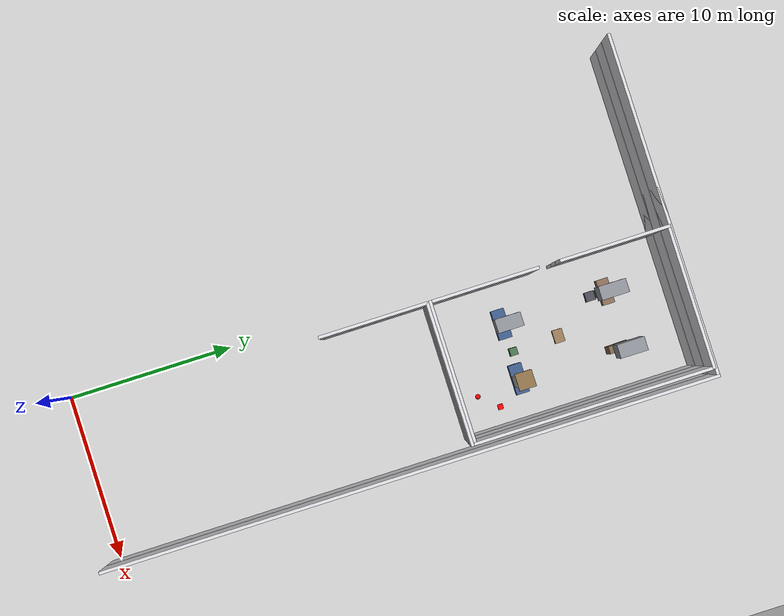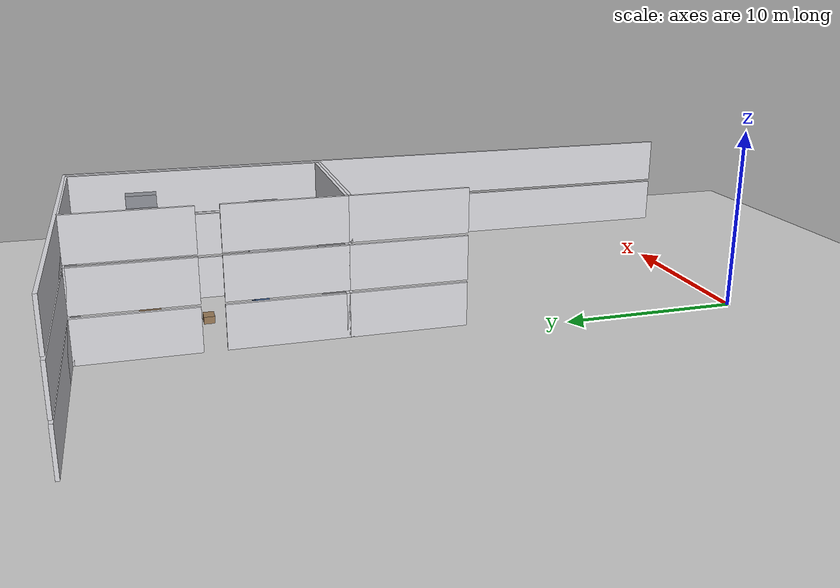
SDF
<sdf version="1.7">
 <world name="generated_world">
  <include><uri>model://sun</uri></include>
  <include><uri>model://ground_plane</uri></include>
  <model name="generated_building">
   <static>true</static>
   <link name="exterior_north_floor_0">
    <pose>0.0000 35.9100 1.2250 0.0000 0.0000 0.0000</pose>
    <collision name="exterior_north_floor_0_collision">
     <geometry><box><size>20.0000 0.1800 2.4500</size></box></geometry>
    </collision>
    <visual name="exterior_north_floor_0_visual">
     <geometry><box><size>20.0000 0.1800 2.4500</size></box></geometry>
     <material><ambient>0.86 0.86 0.88 1</ambient><diffuse>0.86 0.86 0.88 1</diffuse></material>
    </visual>
    <gravity>false</gravity>
   </link>
   <link name="north_end_wall_floor_0">
    <pose>0.0000 35.9100 1.2250 0.0000 0.0000 0.0000</pose>
    <collision name="north_end_wall_floor_0_collision">
     <geometry><box><size>2.2000 0.1800 2.4500</size></box></geometry>
    </collision>
    <visual name="north_end_wall_floor_0_visual">
     <geometry><box><size>2.2000 0.1800 2.4500</size></box></geometry>
     <material><ambient>0.86 0.86 0.88 1</ambient><diffuse>0.86 0.86 0.88 1</diffuse></material>
    </visual>
    <gravity>false</gravity>
   </link>
   <link name="floor_0_room_1_corridor_wall_upper">
    <pose>1.1900 18.6725 1.2250 0.0000 0.0000 0.0000</pose>
    <collision name="floor_0_room_1_corridor_wall_upper_collision">
     <geometry><box><size>0.1800 6.4150 2.4500</size></box></geometry>
    </collision>
    <visual name="floor_0_room_1_corridor_wall_upper_visual">
     <geometry><box><size>0.1800 6.4150 2.4500</size></box></geometry>
     <material><ambient>0.86 0.86 0.88 1</ambient><diffuse>0.86 0.86 0.88 1</diffuse></material>
    </visual>
    <gravity>false</gravity>
   </link>
   <link name="floor_0_room_1_north_wall">
    <pose>5.3000 21.7900 1.2250 0.0000 0.0000 0.0000</pose>
    <collision name="floor_0_room_1_north_wall_collision">
     <geometry><box><size>8.4000 0.1800 2.4500</size></box></geometry>
    </collision>
    <visual name="floor_0_room_1_north_wall_visual">
     <geometry><box><size>8.4000 0.1800 2.4500</size></box></geometry>
     <material><ambient>0.86 0.86 0.88 1</ambient><diffuse>0.86 0.86 0.88 1</diffuse></material>
    </visual>
    <gravity>false</gravity>
   </link>
   <link name="floor_0_room_3_corridor_wall_lower">
    <pose>1.1900 25.0875 1.2250 0.0000 0.0000 0.0000</pose>
    <collision name="floor_0_room_3_corridor_wall_lower_collision">
     <geometry><box><size>0.1800 6.4150 2.4500</size></box></geometry>
    </collision>
    <visual name="floor_0_room_3_corridor_wall_lower_visual">
     <geometry><box><size>0.1800 6.4150 2.4500</size></box></geometry>
     <material><ambient>0.86 0.86 0.88 1</ambient><diffuse>0.86 0.86 0.88 1</diffuse></material>
    </visual>
    <gravity>false</gravity>
   </link>
   <link name="floor_0_room_3_corridor_wall_upper">
    <pose>1.1900 32.7025 1.2250 0.0000 0.0000 0.0000</pose>
    <collision name="floor_0_room_3_corridor_wall_upper_collision">
     <geometry><box><size>0.1800 6.4150 2.4500</size></box></geometry>
    </collision>
    <visual name="floor_0_room_3_corridor_wall_upper_visual">
     <geometry><box><size>0.1800 6.4150 2.4500</size></box></geometry>
     <material><ambient>0.86 0.86 0.88 1</ambient><diffuse>0.86 0.86 0.88 1</diffuse></material>
    </visual>
    <gravity>false</gravity>
   </link>
   <link name="floor_0_room_3_east_wall">
    <pose>9.4100 28.8950 1.2250 0.0000 0.0000 0.0000</pose>
    <collision name="floor_0_room_3_east_wall_collision">
     <geometry><box><size>0.1800 14.0300 2.4500</size></box></geometry>
    </collision>
    <visual name="floor_0_room_3_east_wall_visual">
     <geometry><box><size>0.1800 14.0300 2.4500</size></box></geometry>
     <material><ambient>0.86 0.86 0.88 1</ambient><diffuse>0.86 0.86 0.88 1</diffuse></material>
    </visual>
    <gravity>false</gravity>
   </link>
   <link name="floor_0_room_3_south_wall">
    <pose>5.3000 21.9700 1.2250 0.0000 0.0000 0.0000</pose>
    <collision name="floor_0_room_3_south_wall_collision">
     <geometry><box><size>8.4000 0.1800 2.4500</size></box></geometry>
    </collision>
    <visual name="floor_0_room_3_south_wall_visual">
     <geometry><box><size>8.4000 0.1800 2.4500</size></box></geometry>
     <material><ambient>0.86 0.86 0.88 1</ambient><diffuse>0.86 0.86 0.88 1</diffuse></material>
    </visual>
    <gravity>false</gravity>
   </link>
   <link name="floor_0_room_3_north_wall">
    <pose>5.3000 35.8200 1.2250 0.0000 0.0000 0.0000</pose>
    <collision name="floor_0_room_3_north_wall_collision">
     <geometry><box><size>8.4000 0.1800 2.4500</size></box></geometry>
    </collision>
    <visual name="floor_0_room_3_north_wall_visual">
     <geometry><box><size>8.4000 0.1800 2.4500</size></box></geometry>
     <material><ambient>0.86 0.86 0.88 1</ambient><diffuse>0.86 0.86 0.88 1</diffuse></material>
    </visual>
    <gravity>false</gravity>
   </link>
   <link name="floor_0_room_3_sofa_a">
    <pose>3.6000 25.8375 0.4500 0.0000 0.0000 0.0000</pose>
    <collision name="floor_0_room_3_sofa_a_collision">
     <geometry><box><size>1.8000 0.8000 0.8000</size></box></geometry>
    </collision>
    <visual name="floor_0_room_3_sofa_a_visual">
     <geometry><box><size>1.8000 0.8000 0.8000</size></box></geometry>
     <material><ambient>0.24 0.36 0.54 1</ambient><diffuse>0.24 0.36 0.54 1</diffuse></material>
    </visual>
    <gravity>false</gravity>
   </link>
   <link name="floor_0_room_3_sofa_b">
    <pose>7.0000 25.8375 0.4500 0.0000 0.0000 3.1400</pose>
    <collision name="floor_0_room_3_sofa_b_collision">
     <geometry><box><size>1.8000 0.8000 0.8000</size></box></geometry>
    </collision>
    <visual name="floor_0_room_3_sofa_b_visual">
     <geometry><box><size>1.8000 0.8000 0.8000</size></box></geometry>
     <material><ambient>0.24 0.36 0.54 1</ambient><diffuse>0.24 0.36 0.54 1</diffuse></material>
    </visual>
    <gravity>false</gravity>
   </link>
   <link name="floor_0_room_3_coffee_table">
    <pose>5.3000 28.8950 0.2500 0.0000 0.0000 0.0000</pose>
    <collision name="floor_0_room_3_coffee_table_collision">
     <geometry><box><size>0.8000 0.6000 0.4000</size></box></geometry>
    </collision>
    <visual name="floor_0_room_3_coffee_table_visual">
     <geometry><box><size>0.8000 0.6000 0.4000</size></box></geometry>
     <material><ambient>0.60 0.48 0.34 1</ambient><diffuse>0.60 0.48 0.34 1</diffuse></material>
    </visual>
    <gravity>false</gravity>
   </link>
   <link name="floor_0_room_3_bookshelf">
    <pose>7.0000 31.9525 0.8500 0.0000 0.0000 0.0000</pose>
    <collision name="floor_0_room_3_bookshelf_collision">
     <geometry><box><size>0.4500 1.2000 1.7000</size></box></geometry>
    </collision>
    <visual name="floor_0_room_3_bookshelf_visual">
     <geometry><box><size>0.4500 1.2000 1.7000</size></box></geometry>
     <material><ambient>0.50 0.40 0.30 1</ambient><diffuse>0.50 0.40 0.30 1</diffuse></material>
    </visual>
    <gravity>false</gravity>
   </link>
   <link name="floor_0_room_3_planter">
    <pose>3.6000 31.9525 0.4500 0.0000 0.0000 0.0000</pose>
    <collision name="floor_0_room_3_planter_collision">
     <geometry><box><size>0.4500 0.4500 0.9000</size></box></geometry>
    </collision>
    <visual name="floor_0_room_3_planter_visual">
     <geometry><box><size>0.4500 0.4500 0.9000</size></box></geometry>
     <material><ambient>0.28 0.46 0.30 1</ambient><diffuse>0.28 0.46 0.30 1</diffuse></material>
    </visual>
    <gravity>false</gravity>
   </link>
   <link name="exterior_east_floor_1">
    <pose>9.9100 18.0000 3.8250 0.0000 0.0000 0.0000</pose>
    <collision name="exterior_east_floor_1_collision">
     <geometry><box><size>0.1800 36.0000 2.4500</size></box></geometry>
    </collision>
    <visual name="exterior_east_floor_1_visual">
     <geometry><box><size>0.1800 36.0000 2.4500</size></box></geometry>
     <material><ambient>0.86 0.86 0.88 1</ambient><diffuse>0.86 0.86 0.88 1</diffuse></material>
    </visual>
    <gravity>false</gravity>
   </link>
   <link name="exterior_north_floor_1">
    <pose>0.0000 35.9100 3.8250 0.0000 0.0000 0.0000</pose>
    <collision name="exterior_north_floor_1_collision">
     <geometry><box><size>20.0000 0.1800 2.4500</size></box></geometry>
    </collision>
    <visual name="exterior_north_floor_1_visual">
     <geometry><box><size>20.0000 0.1800 2.4500</size></box></geometry>
     <material><ambient>0.86 0.86 0.88 1</ambient><diffuse>0.86 0.86 0.88 1</diffuse></material>
    </visual>
    <gravity>false</gravity>
   </link>
   <link name="north_end_wall_floor_1">
    <pose>0.0000 35.9100 3.8250 0.0000 0.0000 0.0000</pose>
    <collision name="north_end_wall_floor_1_collision">
     <geometry><box><size>2.2000 0.1800 2.4500</size></box></geometry>
    </collision>
    <visual name="north_end_wall_floor_1_visual">
     <geometry><box><size>2.2000 0.1800 2.4500</size></box></geometry>
     <material><ambient>0.86 0.86 0.88 1</ambient><diffuse>0.86 0.86 0.88 1</diffuse></material>
    </visual>
    <gravity>false</gravity>
   </link>
   <link name="floor_1_room_1_corridor_wall_upper">
    <pose>1.1900 18.6725 3.8250 0.0000 0.0000 0.0000</pose>
    <collision name="floor_1_room_1_corridor_wall_upper_collision">
     <geometry><box><size>0.1800 6.4150 2.4500</size></box></geometry>
    </collision>
    <visual name="floor_1_room_1_corridor_wall_upper_visual">
     <geometry><box><size>0.1800 6.4150 2.4500</size></box></geometry>
     <material><ambient>0.86 0.86 0.88 1</ambient><diffuse>0.86 0.86 0.88 1</diffuse></material>
    </visual>
    <gravity>false</gravity>
   </link>
   <link name="floor_1_room_1_north_wall">
    <pose>5.3000 21.7900 3.8250 0.0000 0.0000 0.0000</pose>
    <collision name="floor_1_room_1_north_wall_collision">
     <geometry><box><size>8.4000 0.1800 2.4500</size></box></geometry>
    </collision>
    <visual name="floor_1_room_1_north_wall_visual">
     <geometry><box><size>8.4000 0.1800 2.4500</size></box></geometry>
     <material><ambient>0.86 0.86 0.88 1</ambient><diffuse>0.86 0.86 0.88 1</diffuse></material>
    </visual>
    <gravity>false</gravity>
   </link>
   <link name="floor_1_room_3_corridor_wall_lower">
    <pose>1.1900 25.0875 3.8250 0.0000 0.0000 0.0000</pose>
    <collision name="floor_1_room_3_corridor_wall_lower_collision">
     <geometry><box><size>0.1800 6.4150 2.4500</size></box></geometry>
    </collision>
    <visual name="floor_1_room_3_corridor_wall_lower_visual">
     <geometry><box><size>0.1800 6.4150 2.4500</size></box></geometry>
     <material><ambient>0.86 0.86 0.88 1</ambient><diffuse>0.86 0.86 0.88 1</diffuse></material>
    </visual>
    <gravity>false</gravity>
   </link>
   <link name="floor_1_room_3_corridor_wall_upper">
    <pose>1.1900 32.7025 3.8250 0.0000 0.0000 0.0000</pose>
    <collision name="floor_1_room_3_corridor_wall_upper_collision">
     <geometry><box><size>0.1800 6.4150 2.4500</size></box></geometry>
    </collision>
    <visual name="floor_1_room_3_corridor_wall_upper_visual">
     <geometry><box><size>0.1800 6.4150 2.4500</size></box></geometry>
     <material><ambient>0.86 0.86 0.88 1</ambient><diffuse>0.86 0.86 0.88 1</diffuse></material>
    </visual>
    <gravity>false</gravity>
   </link>
   <link name="floor_1_room_3_east_wall">
    <pose>9.4100 28.8950 3.8250 0.0000 0.0000 0.0000</pose>
    <collision name="floor_1_room_3_east_wall_collision">
     <geometry><box><size>0.1800 14.0300 2.4500</size></box></geometry>
    </collision>
    <visual name="floor_1_room_3_east_wall_visual">
     <geometry><box><size>0.1800 14.0300 2.4500</size></box></geometry>
     <material><ambient>0.86 0.86 0.88 1</ambient><diffuse>0.86 0.86 0.88 1</diffuse></material>
    </visual>
    <gravity>false</gravity>
   </link>
   <link name="floor_1_room_3_south_wall">
    <pose>5.3000 21.9700 3.8250 0.0000 0.0000 0.0000</pose>
    <collision name="floor_1_room_3_south_wall_collision">
     <geometry><box><size>8.4000 0.1800 2.4500</size></box></geometry>
    </collision>
    <visual name="floor_1_room_3_south_wall_visual">
     <geometry><box><size>8.4000 0.1800 2.4500</size></box></geometry>
     <material><ambient>0.86 0.86 0.88 1</ambient><diffuse>0.86 0.86 0.88 1</diffuse></material>
    </visual>
    <gravity>false</gravity>
   </link>
   <link name="floor_1_room_3_north_wall">
    <pose>5.3000 35.8200 3.8250 0.0000 0.0000 0.0000</pose>
    <collision name="floor_1_room_3_north_wall_collision">
     <geometry><box><size>8.4000 0.1800 2.4500</size></box></geometry>
    </collision>
    <visual name="floor_1_room_3_north_wall_visual">
     <geometry><box><size>8.4000 0.1800 2.4500</size></box></geometry>
     <material><ambient>0.86 0.86 0.88 1</ambient><diffuse>0.86 0.86 0.88 1</diffuse></material>
    </visual>
    <gravity>false</gravity>
   </link>
   <link name="floor_1_room_3_desk">
    <pose>3.6000 31.9525 3.0500 0.0000 0.0000 0.0000</pose>
    <collision name="floor_1_room_3_desk_collision">
     <geometry><box><size>1.5000 0.7000 0.7500</size></box></geometry>
    </collision>
    <visual name="floor_1_room_3_desk_visual">
     <geometry><box><size>1.5000 0.7000 0.7500</size></box></geometry>
     <material><ambient>0.54 0.43 0.34 1</ambient><diffuse>0.54 0.43 0.34 1</diffuse></material>
    </visual>
    <gravity>false</gravity>
   </link>
   <link name="floor_1_room_3_chair">
    <pose>3.6000 31.0525 2.8800 0.0000 0.0000 0.0000</pose>
    <collision name="floor_1_room_3_chair_collision">
     <geometry><box><size>0.5500 0.5500 0.5500</size></box></geometry>
    </collision>
    <visual name="floor_1_room_3_chair_visual">
     <geometry><box><size>0.5500 0.5500 0.5500</size></box></geometry>
     <material><ambient>0.30 0.30 0.34 1</ambient><diffuse>0.30 0.30 0.34 1</diffuse></material>
    </visual>
    <gravity>false</gravity>
   </link>
   <link name="floor_1_room_3_cabinet">
    <pose>7.0000 25.8375 3.5000 0.0000 0.0000 0.0000</pose>
    <collision name="floor_1_room_3_cabinet_collision">
     <geometry><box><size>0.6000 1.0000 1.8000</size></box></geometry>
    </collision>
    <visual name="floor_1_room_3_cabinet_visual">
     <geometry><box><size>0.6000 1.0000 1.8000</size></box></geometry>
     <material><ambient>0.72 0.72 0.74 1</ambient><diffuse>0.72 0.72 0.74 1</diffuse></material>
    </visual>
    <gravity>false</gravity>
   </link>
   <link name="floor_1_room_3_side_table">
    <pose>7.0000 31.9525 2.9200 0.0000 0.0000 0.0000</pose>
    <collision name="floor_1_room_3_side_table_collision">
     <geometry><box><size>0.7000 0.7000 0.4500</size></box></geometry>
    </collision>
    <visual name="floor_1_room_3_side_table_visual">
     <geometry><box><size>0.7000 0.7000 0.4500</size></box></geometry>
     <material><ambient>0.52 0.42 0.33 1</ambient><diffuse>0.52 0.42 0.33 1</diffuse></material>
    </visual>
    <gravity>false</gravity>
   </link>
   <link name="floor_1_room_3_planter">
    <pose>5.3000 25.8375 3.0500 0.0000 0.0000 0.0000</pose>
    <collision name="floor_1_room_3_planter_collision">
     <geometry><box><size>0.4500 0.4500 0.9000</size></box></geometry>
    </collision>
    <visual name="floor_1_room_3_planter_visual">
     <geometry><box><size>0.4500 0.4500 0.9000</size></box></geometry>
     <material><ambient>0.28 0.46 0.30 1</ambient><diffuse>0.28 0.46 0.30 1</diffuse></material>
    </visual>
    <gravity>false</gravity>
   </link>
   <link name="exterior_east_floor_2">
    <pose>9.9100 18.0000 6.4250 0.0000 0.0000 0.0000</pose>
    <collision name="exterior_east_floor_2_collision">
     <geometry><box><size>0.1800 36.0000 2.4500</size></box></geometry>
    </collision>
    <visual name="exterior_east_floor_2_visual">
     <geometry><box><size>0.1800 36.0000 2.4500</size></box></geometry>
     <material><ambient>0.86 0.86 0.88 1</ambient><diffuse>0.86 0.86 0.88 1</diffuse></material>
    </visual>
    <gravity>false</gravity>
   </link>
   <link name="exterior_north_floor_2">
    <pose>0.0000 35.9100 6.4250 0.0000 0.0000 0.0000</pose>
    <collision name="exterior_north_floor_2_collision">
     <geometry><box><size>20.0000 0.1800 2.4500</size></box></geometry>
    </collision>
    <visual name="exterior_north_floor_2_visual">
     <geometry><box><size>20.0000 0.1800 2.4500</size></box></geometry>
     <material><ambient>0.86 0.86 0.88 1</ambient><diffuse>0.86 0.86 0.88 1</diffuse></material>
    </visual>
    <gravity>false</gravity>
   </link>
   <link name="north_end_wall_floor_2">
    <pose>0.0000 35.9100 6.4250 0.0000 0.0000 0.0000</pose>
    <collision name="north_end_wall_floor_2_collision">
     <geometry><box><size>2.2000 0.1800 2.4500</size></box></geometry>
    </collision>
    <visual name="north_end_wall_floor_2_visual">
     <geometry><box><size>2.2000 0.1800 2.4500</size></box></geometry>
     <material><ambient>0.86 0.86 0.88 1</ambient><diffuse>0.86 0.86 0.88 1</diffuse></material>
    </visual>
    <gravity>false</gravity>
   </link>
   <link name="floor_2_room_1_corridor_wall_upper">
    <pose>1.1900 18.6725 6.4250 0.0000 0.0000 0.0000</pose>
    <collision name="floor_2_room_1_corridor_wall_upper_collision">
     <geometry><box><size>0.1800 6.4150 2.4500</size></box></geometry>
    </collision>
    <visual name="floor_2_room_1_corridor_wall_upper_visual">
     <geometry><box><size>0.1800 6.4150 2.4500</size></box></geometry>
     <material><ambient>0.86 0.86 0.88 1</ambient><diffuse>0.86 0.86 0.88 1</diffuse></material>
    </visual>
    <gravity>false</gravity>
   </link>
   <link name="floor_2_room_1_north_wall">
    <pose>5.3000 21.7900 6.4250 0.0000 0.0000 0.0000</pose>
    <collision name="floor_2_room_1_north_wall_collision">
     <geometry><box><size>8.4000 0.1800 2.4500</size></box></geometry>
    </collision>
    <visual name="floor_2_room_1_north_wall_visual">
     <geometry><box><size>8.4000 0.1800 2.4500</size></box></geometry>
     <material><ambient>0.86 0.86 0.88 1</ambient><diffuse>0.86 0.86 0.88 1</diffuse></material>
    </visual>
    <gravity>false</gravity>
   </link>
   <link name="floor_2_room_3_corridor_wall_lower">
    <pose>1.1900 25.0875 6.4250 0.0000 0.0000 0.0000</pose>
    <collision name="floor_2_room_3_corridor_wall_lower_collision">
     <geometry><box><size>0.1800 6.4150 2.4500</size></box></geometry>
    </collision>
    <visual name="floor_2_room_3_corridor_wall_lower_visual">
     <geometry><box><size>0.1800 6.4150 2.4500</size></box></geometry>
     <material><ambient>0.86 0.86 0.88 1</ambient><diffuse>0.86 0.86 0.88 1</diffuse></material>
    </visual>
    <gravity>false</gravity>
   </link>
   <link name="floor_2_room_3_corridor_wall_upper">
    <pose>1.1900 32.7025 6.4250 0.0000 0.0000 0.0000</pose>
    <collision name="floor_2_room_3_corridor_wall_upper_collision">
     <geometry><box><size>0.1800 6.4150 2.4500</size></box></geometry>
    </collision>
    <visual name="floor_2_room_3_corridor_wall_upper_visual">
     <geometry><box><size>0.1800 6.4150 2.4500</size></box></geometry>
     <material><ambient>0.86 0.86 0.88 1</ambient><diffuse>0.86 0.86 0.88 1</diffuse></material>
    </visual>
    <gravity>false</gravity>
   </link>
   <link name="floor_2_room_3_east_wall">
    <pose>9.4100 28.8950 6.4250 0.0000 0.0000 0.0000</pose>
    <collision name="floor_2_room_3_east_wall_collision">
     <geometry><box><size>0.1800 14.0300 2.4500</size></box></geometry>
    </collision>
    <visual name="floor_2_room_3_east_wall_visual">
     <geometry><box><size>0.1800 14.0300 2.4500</size></box></geometry>
     <material><ambient>0.86 0.86 0.88 1</ambient><diffuse>0.86 0.86 0.88 1</diffuse></material>
    </visual>
    <gravity>false</gravity>
   </link>
   <link name="floor_2_room_3_south_wall">
    <pose>5.3000 21.9700 6.4250 0.0000 0.0000 0.0000</pose>
    <collision name="floor_2_room_3_south_wall_collision">
     <geometry><box><size>8.4000 0.1800 2.4500</size></box></geometry>
    </collision>
    <visual name="floor_2_room_3_south_wall_visual">
     <geometry><box><size>8.4000 0.1800 2.4500</size></box></geometry>
     <material><ambient>0.86 0.86 0.88 1</ambient><diffuse>0.86 0.86 0.88 1</diffuse></material>
    </visual>
    <gravity>false</gravity>
   </link>
   <link name="floor_2_room_3_north_wall">
    <pose>5.3000 35.8200 6.4250 0.0000 0.0000 0.0000</pose>
    <collision name="floor_2_room_3_north_wall_collision">
     <geometry><box><size>8.4000 0.1800 2.4500</size></box></geometry>
    </collision>
    <visual name="floor_2_room_3_north_wall_visual">
     <geometry><box><size>8.4000 0.1800 2.4500</size></box></geometry>
     <material><ambient>0.86 0.86 0.88 1</ambient><diffuse>0.86 0.86 0.88 1</diffuse></material>
    </visual>
    <gravity>false</gravity>
   </link>
   <link name="floor_2_room_3_rack_a">
    <pose>3.6000 31.9525 6.1000 0.0000 0.0000 0.0000</pose>
    <collision name="floor_2_room_3_rack_a_collision">
     <geometry><box><size>0.8000 1.6000 1.8000</size></box></geometry>
    </collision>
    <visual name="floor_2_room_3_rack_a_visual">
     <geometry><box><size>0.8000 1.6000 1.8000</size></box></geometry>
     <material><ambient>0.56 0.57 0.60 1</ambient><diffuse>0.56 0.57 0.60 1</diffuse></material>
    </visual>
    <gravity>false</gravity>
   </link>
   <link name="floor_2_room_3_rack_b">
    <pose>7.0000 31.9525 6.1000 0.0000 0.0000 0.0000</pose>
    <collision name="floor_2_room_3_rack_b_collision">
     <geometry><box><size>0.8000 1.6000 1.8000</size></box></geometry>
    </collision>
    <visual name="floor_2_room_3_rack_b_visual">
     <geometry><box><size>0.8000 1.6000 1.8000</size></box></geometry>
     <material><ambient>0.56 0.57 0.60 1</ambient><diffuse>0.56 0.57 0.60 1</diffuse></material>
    </visual>
    <gravity>false</gravity>
   </link>
   <link name="floor_2_room_3_rack_c">
    <pose>3.6000 25.8375 6.1000 0.0000 0.0000 0.0000</pose>
    <collision name="floor_2_room_3_rack_c_collision">
     <geometry><box><size>0.8000 1.5000 1.8000</size></box></geometry>
    </collision>
    <visual name="floor_2_room_3_rack_c_visual">
     <geometry><box><size>0.8000 1.5000 1.8000</size></box></geometry>
     <material><ambient>0.56 0.57 0.60 1</ambient><diffuse>0.56 0.57 0.60 1</diffuse></material>
    </visual>
    <gravity>false</gravity>
   </link>
   <link name="floor_2_room_3_pallet">
    <pose>7.0000 25.8375 5.3200 0.0000 0.0000 0.0000</pose>
    <collision name="floor_2_room_3_pallet_collision">
     <geometry><box><size>1.0000 1.0000 0.2400</size></box></geometry>
    </collision>
    <visual name="floor_2_room_3_pallet_visual">
     <geometry><box><size>1.0000 1.0000 0.2400</size></box></geometry>
     <material><ambient>0.56 0.44 0.28 1</ambient><diffuse>0.56 0.44 0.28 1</diffuse></material>
    </visual>
    <gravity>false</gravity>
   </link>
  </model>
  <model name="danger_red_sphere_00">
   <static>true</static>
   <pose>7.195261 23.108222 2.750000 0.000000 0.000000 0.000000</pose>
   <link name="link">
    <collision name="collision"><geometry><sphere><radius>0.150</radius></sphere></geometry></collision>
    <visual name="visual">
     <geometry><sphere><radius>0.150</radius></sphere></geometry>
     <material><ambient>1.0 0.0 0.0 1.0</ambient><diffuse>1.0 0.0 0.0 1.0</diffuse></material>
    </visual>
   </link>
  </model>
  <model name="distractor_red_box_04">
   <static>true</static>
   <pose>8.005225 24.030593 5.350000 0.000000 0.000000 0.000000</pose>
   <link name="link">
    <collision name="collision">
     <geometry><box><size>0.300000 0.300000 0.300000</size></box></geometry>
    </collision>
    <visual name="visual">
     <geometry><box><size>0.300000 0.300000 0.300000</size></box></geometry>
     <material><ambient>1.0 0.0 0.0 1.0</ambient><diffuse>1.0 0.0 0.0 1.0</diffuse></material>
    </visual>
   </link>
  </model>
 </world>
</sdf>
